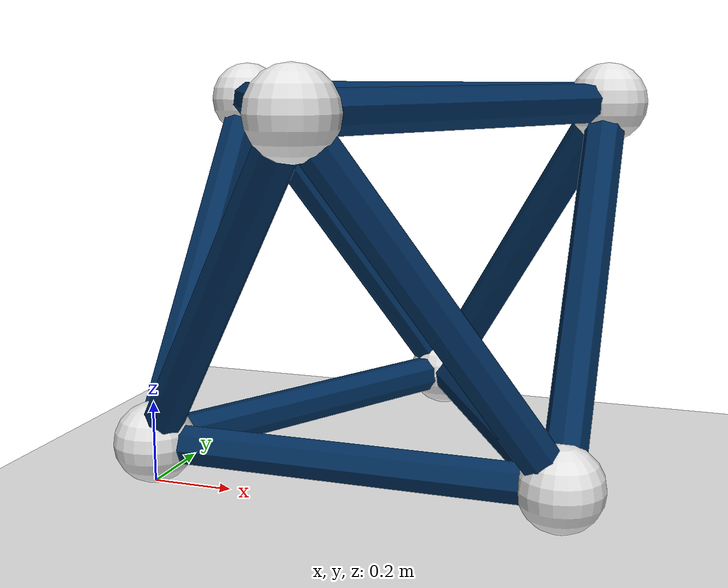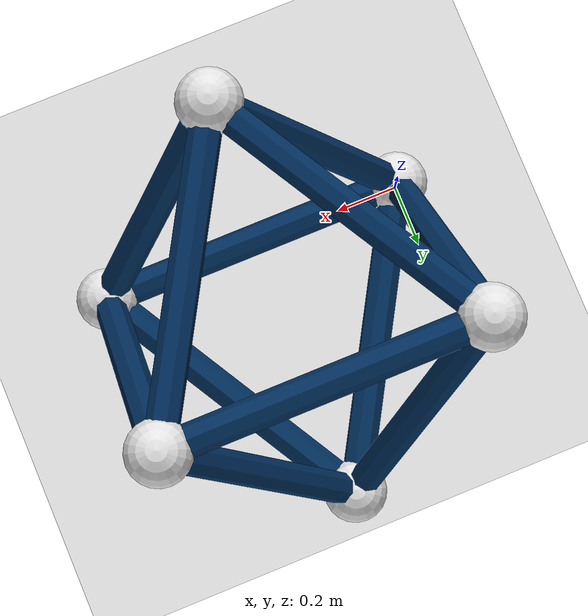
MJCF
<mujoco model="MuJoCo Model">
  <compiler angle="radian"/>

  <worldbody>
    <geom size="50 1 0.1" type="plane" rgba="0.9 0.9 0.9 1"/>
    <light name="top" pos="0 0 1" dir="0 0 -1"/>
    <body name="node_1" pos="0 0 0.1">
      <joint name="node_1_x" pos="0 0 0" axis="1 0 0" type="slide"/>
      <joint name="node_1_y" pos="0 0 0" axis="0 1 0" type="slide"/>
      <joint name="node_1_z" pos="0 0 0" axis="0 0 1" type="slide"/>
      <geom size="0.1" rgba="0.9 0.9 0.9 1"/>
      <site name="node_1" pos="0 0 0"/>
    </body>
    <body name="node_2" pos="1 0 0.1">
      <joint name="node_2_x" pos="0 0 0" axis="1 0 0" type="slide"/>
      <joint name="node_2_y" pos="0 0 0" axis="0 1 0" type="slide"/>
      <joint name="node_2_z" pos="0 0 0" axis="0 0 1" type="slide"/>
      <geom size="0.1" rgba="0.9 0.9 0.9 1"/>
      <site name="node_2" pos="0 0 0"/>
    </body>
    <body name="node_3" pos="0.5 0.866 0.1">
      <joint name="node_3_x" pos="0 0 0" axis="1 0 0" type="slide"/>
      <joint name="node_3_y" pos="0 0 0" axis="0 1 0" type="slide"/>
      <joint name="node_3_z" pos="0 0 0" axis="0 0 1" type="slide"/>
      <geom size="0.1" rgba="0.9 0.9 0.9 1"/>
      <site name="node_3" pos="0 0 0"/>
    </body>
    <body name="node_4" pos="0.5 -0.2887 0.9165">
      <joint name="node_4_x" pos="0 0 0" axis="1 0 0" type="slide"/>
      <joint name="node_4_y" pos="0 0 0" axis="0 1 0" type="slide"/>
      <joint name="node_4_z" pos="0 0 0" axis="0 0 1" type="slide"/>
      <geom size="0.1" rgba="0.9 0.9 0.9 1"/>
      <site name="node_4" pos="0 0 0"/>
    </body>
    <body name="node_5" pos="0 0.5774 0.9165">
      <joint name="node_5_x" pos="0 0 0" axis="1 0 0" type="slide"/>
      <joint name="node_5_y" pos="0 0 0" axis="0 1 0" type="slide"/>
      <joint name="node_5_z" pos="0 0 0" axis="0 0 1" type="slide"/>
      <geom size="0.1" rgba="0.9 0.9 0.9 1"/>
      <site name="node_5" pos="0 0 0"/>
    </body>
    <body name="node_6" pos="1 0.5774 0.9165">
      <joint name="node_6_x" pos="0 0 0" axis="1 0 0" type="slide"/>
      <joint name="node_6_y" pos="0 0 0" axis="0 1 0" type="slide"/>
      <joint name="node_6_z" pos="0 0 0" axis="0 0 1" type="slide"/>
      <geom size="0.1" rgba="0.9 0.9 0.9 1"/>
      <site name="node_6" pos="0 0 0"/>
    </body>
  </worldbody>

  <equality>

    <tendon name="Perimeter_Constraint_0" tendon1="tendon_node_2_node_4" tendon2="Perimeter_Constraint_0" polycoef="0 -1 0 0 0" solref="0.04 1.2" solimp="0.85 0.95 0.001 0.5 2.0"/>

    <tendon name="Perimeter_Constraint_1" tendon1="tendon_node_5_node_3" tendon2="Perimeter_Constraint_1" polycoef="0 -1 0 0 0" solref="0.04 1.2" solimp="0.85 0.95 0.001 0.5 2.0"/>

    <tendon name="Perimeter_Constraint_2" tendon1="tendon_node_2_node_3" tendon2="Perimeter_Constraint_2" polycoef="0 -1 0 0 0" solref="0.04 1.2" solimp="0.85 0.95 0.001 0.5 2.0"/>

    <tendon name="Perimeter_Constraint_3" tendon1="tendon_node_5_node_4" tendon2="Perimeter_Constraint_3" polycoef="0 -1 0 0 0" solref="0.04 1.2" solimp="0.85 0.95 0.001 0.5 2.0"/>
  </equality>

  <tendon>
    <spatial name="tendon_node_1_node_2" range="0.5 2" width="0.05" rgba="0 0.1804 0.3647 1">
      <site site="node_1"/>
      <site site="node_2"/>
    </spatial>
    <spatial name="tendon_node_2_node_4" range="0.5 2" width="0.05" rgba="0 0.1804 0.3647 1">
      <site site="node_2"/>
      <site site="node_4"/>
    </spatial>
    <spatial name="tendon_node_4_node_1" range="0.5 2" width="0.05" rgba="0 0.1804 0.3647 1">
      <site site="node_4"/>
      <site site="node_1"/>
    </spatial>
    <spatial name="tendon_node_1_node_5" range="0.5 2" width="0.05" rgba="0 0.1804 0.3647 1">
      <site site="node_1"/>
      <site site="node_5"/>
    </spatial>
    <spatial name="tendon_node_5_node_3" range="0.5 2" width="0.05" rgba="0 0.1804 0.3647 1">
      <site site="node_5"/>
      <site site="node_3"/>
    </spatial>
    <spatial name="tendon_node_3_node_1" range="0.5 2" width="0.05" rgba="0 0.1804 0.3647 1">
      <site site="node_3"/>
      <site site="node_1"/>
    </spatial>
    <spatial name="tendon_node_3_node_6" range="0.5 2" width="0.05" rgba="0 0.1804 0.3647 1">
      <site site="node_3"/>
      <site site="node_6"/>
    </spatial>
    <spatial name="tendon_node_6_node_2" range="0.5 2" width="0.05" rgba="0 0.1804 0.3647 1">
      <site site="node_6"/>
      <site site="node_2"/>
    </spatial>
    <spatial name="tendon_node_2_node_3" range="0.5 2" width="0.05" rgba="0 0.1804 0.3647 1">
      <site site="node_2"/>
      <site site="node_3"/>
    </spatial>
    <spatial name="tendon_node_4_node_6" range="0.5 2" width="0.05" rgba="0 0.1804 0.3647 1">
      <site site="node_4"/>
      <site site="node_6"/>
    </spatial>
    <spatial name="tendon_node_6_node_5" range="0.5 2" width="0.05" rgba="0 0.1804 0.3647 1">
      <site site="node_6"/>
      <site site="node_5"/>
    </spatial>
    <spatial name="tendon_node_5_node_4" range="0.5 2" width="0.05" rgba="0 0.1804 0.3647 1">
      <site site="node_5"/>
      <site site="node_4"/>
    </spatial>
    <spatial name="Perimeter_Constraint_0">
      <site site="node_2"/>
      <site site="node_1"/>
      <site site="node_4"/>
    </spatial>
    <spatial name="Perimeter_Constraint_1">
      <site site="node_5"/>
      <site site="node_1"/>
      <site site="node_3"/>
    </spatial>
    <spatial name="Perimeter_Constraint_2">
      <site site="node_3"/>
      <site site="node_6"/>
      <site site="node_2"/>
    </spatial>
    <spatial name="Perimeter_Constraint_3">
      <site site="node_4"/>
      <site site="node_6"/>
      <site site="node_5"/>
    </spatial>
  </tendon>

  <actuator>
    <general name="act_tendon_node_1_node_2" tendon="tendon_node_1_node_2" ctrllimited="true" ctrlrange="-0.05 0.05" actlimited="true" actrange="0 3" dyntype="integrator" biastype="affine" gainprm="1000" biasprm="0 -1000 1"/>
    <general name="act_tendon_node_4_node_1" tendon="tendon_node_4_node_1" ctrllimited="true" ctrlrange="-0.05 0.05" actlimited="true" actrange="0 3" dyntype="integrator" biastype="affine" gainprm="1000" biasprm="0 -1000 1"/>
    <general name="act_tendon_node_1_node_5" tendon="tendon_node_1_node_5" ctrllimited="true" ctrlrange="-0.05 0.05" actlimited="true" actrange="0 3" dyntype="integrator" biastype="affine" gainprm="1000" biasprm="0 -1000 1"/>
    <general name="act_tendon_node_3_node_1" tendon="tendon_node_3_node_1" ctrllimited="true" ctrlrange="-0.05 0.05" actlimited="true" actrange="0 3" dyntype="integrator" biastype="affine" gainprm="1000" biasprm="0 -1000 1"/>
    <general name="act_tendon_node_3_node_6" tendon="tendon_node_3_node_6" ctrllimited="true" ctrlrange="-0.05 0.05" actlimited="true" actrange="0 3" dyntype="integrator" biastype="affine" gainprm="1000" biasprm="0 -1000 1"/>
    <general name="act_tendon_node_6_node_2" tendon="tendon_node_6_node_2" ctrllimited="true" ctrlrange="-0.05 0.05" actlimited="true" actrange="0 3" dyntype="integrator" biastype="affine" gainprm="1000" biasprm="0 -1000 1"/>
    <general name="act_tendon_node_4_node_6" tendon="tendon_node_4_node_6" ctrllimited="true" ctrlrange="-0.05 0.05" actlimited="true" actrange="0 3" dyntype="integrator" biastype="affine" gainprm="1000" biasprm="0 -1000 1"/>
    <general name="act_tendon_node_6_node_5" tendon="tendon_node_6_node_5" ctrllimited="true" ctrlrange="-0.05 0.05" actlimited="true" actrange="0 3" dyntype="integrator" biastype="affine" gainprm="1000" biasprm="0 -1000 1"/>
  </actuator>
</mujoco>
